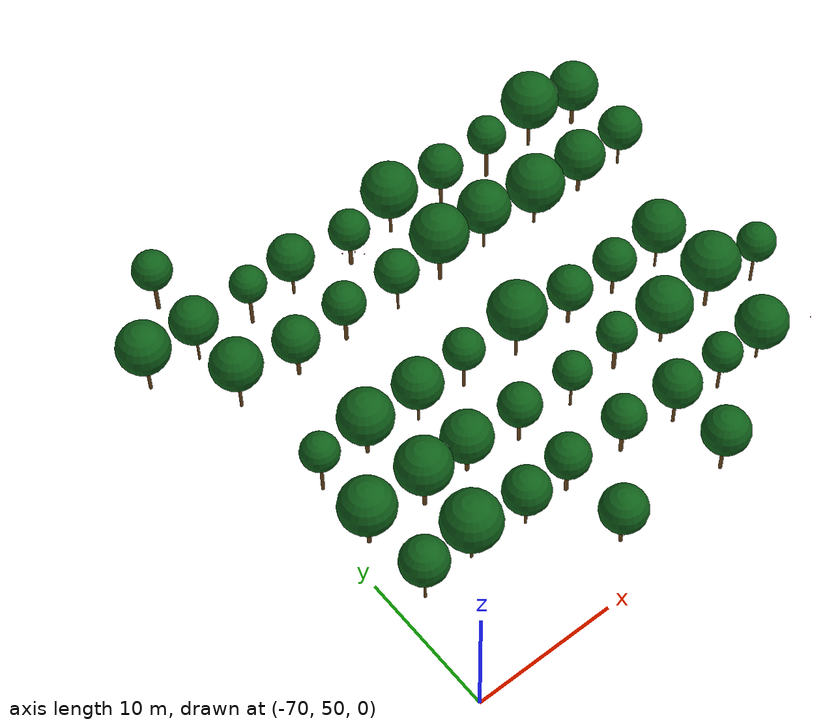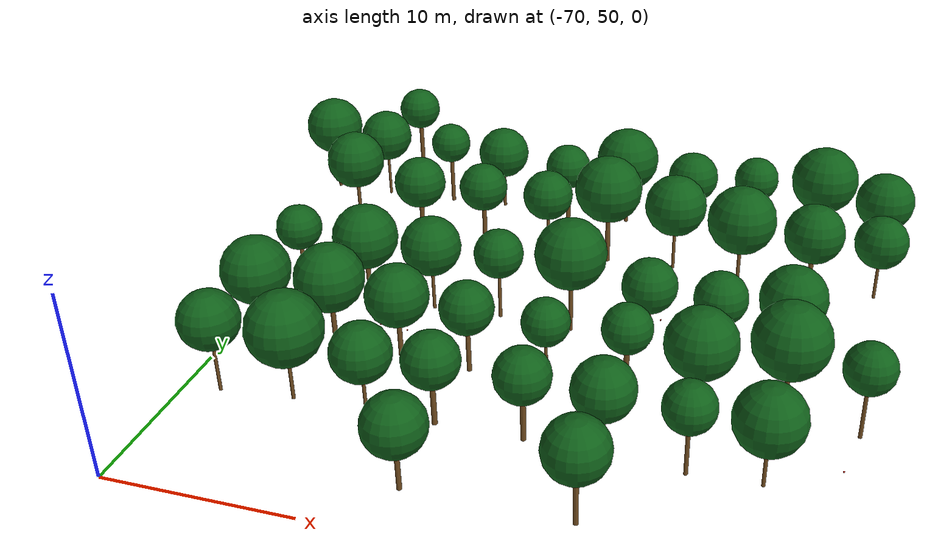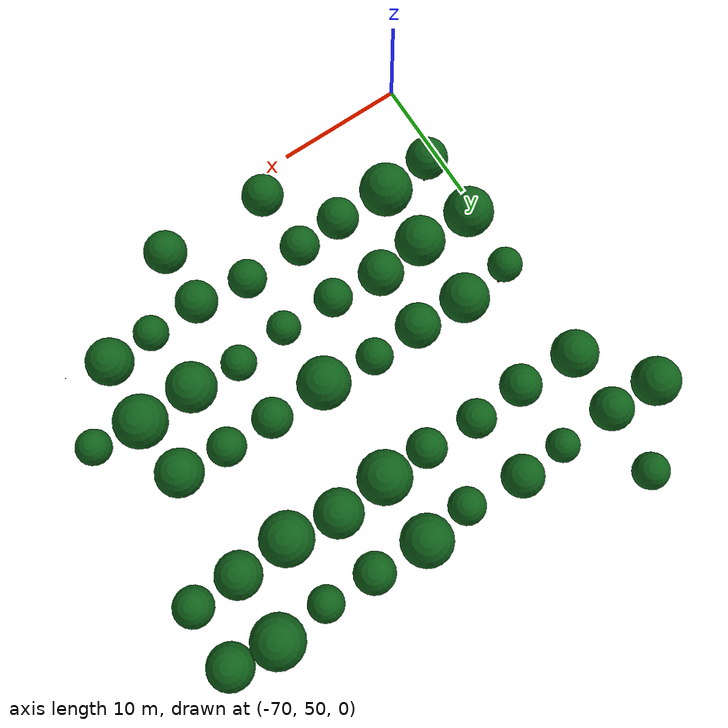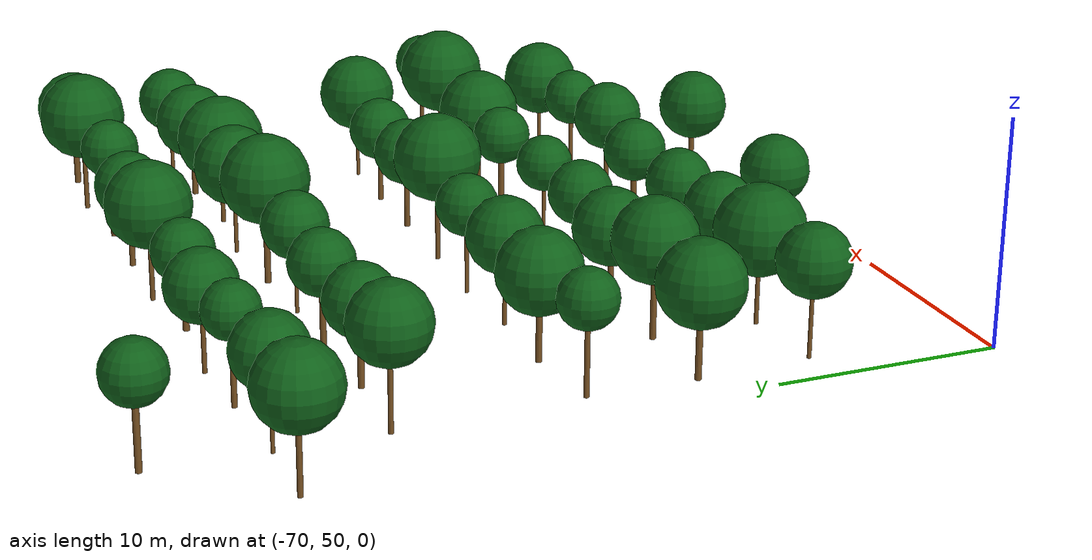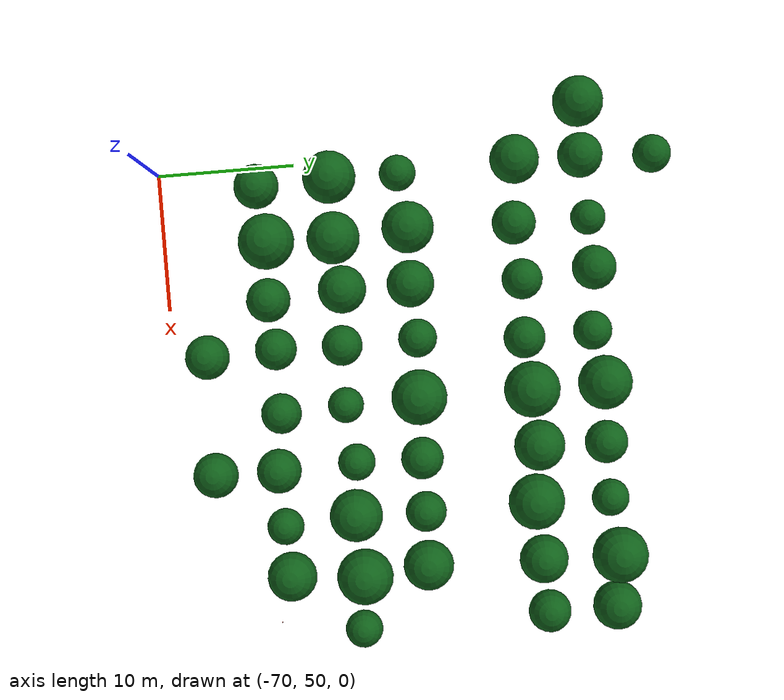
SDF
<sdf version="1.9">
 <world name="cheongsong_orchard">
  <model name="apple_tree_1759">
   <static>true</static>
   <pose>-56.31 53.08 0 0 0 0</pose>
   <link name="link">
    <collision name="trunk_col">
     <pose>0 0 1.05 0 0 0</pose>
     <geometry><cylinder><radius>0.124</radius><length>2.10</length></cylinder></geometry>
    </collision>
    <visual name="trunk_vis">
     <pose>0 0 1.05 0 0 0</pose>
     <geometry><cylinder><radius>0.124</radius><length>2.10</length></cylinder></geometry>
     <material><ambient>0.35 0.22 0.08 1</ambient><diffuse>0.45 0.30 0.12 1</diffuse></material>
    </visual>
    <collision name="canopy_col">
     <pose>0 0 3.68 0 0 0</pose>
     <geometry><sphere><radius>1.58</radius></sphere></geometry>
    </collision>
    <visual name="canopy_vis">
     <pose>0 0 3.68 0 0 0</pose>
     <geometry><sphere><radius>1.58</radius></sphere></geometry>
     <material><ambient>0.04 0.28 0.06 1</ambient><diffuse>0.06 0.38 0.10 1</diffuse></material>
    </visual>
   </link>
  </model>
  <model name="apple_tree_1761">
   <static>true</static>
   <pose>-47.95 53.09 0 0 0 0</pose>
   <link name="link">
    <collision name="trunk_col">
     <pose>0 0 1.29 0 0 0</pose>
     <geometry><cylinder><radius>0.121</radius><length>2.58</length></cylinder></geometry>
    </collision>
    <visual name="trunk_vis">
     <pose>0 0 1.29 0 0 0</pose>
     <geometry><cylinder><radius>0.121</radius><length>2.58</length></cylinder></geometry>
     <material><ambient>0.35 0.22 0.08 1</ambient><diffuse>0.45 0.30 0.12 1</diffuse></material>
    </visual>
    <collision name="canopy_col">
     <pose>0 0 4.18 0 0 0</pose>
     <geometry><sphere><radius>1.60</radius></sphere></geometry>
    </collision>
    <visual name="canopy_vis">
     <pose>0 0 4.18 0 0 0</pose>
     <geometry><sphere><radius>1.60</radius></sphere></geometry>
     <material><ambient>0.04 0.28 0.06 1</ambient><diffuse>0.06 0.38 0.10 1</diffuse></material>
    </visual>
   </link>
  </model>
  <model name="apple_tree_1812">
   <static>true</static>
   <pose>-68.05 57.58 0 0 0 0</pose>
   <link name="link">
    <collision name="trunk_col">
     <pose>0 0 1.34 0 0 0</pose>
     <geometry><cylinder><radius>0.088</radius><length>2.69</length></cylinder></geometry>
    </collision>
    <visual name="trunk_vis">
     <pose>0 0 1.34 0 0 0</pose>
     <geometry><cylinder><radius>0.088</radius><length>2.69</length></cylinder></geometry>
     <material><ambient>0.35 0.22 0.08 1</ambient><diffuse>0.45 0.30 0.12 1</diffuse></material>
    </visual>
    <collision name="canopy_col">
     <pose>0 0 4.28 0 0 0</pose>
     <geometry><sphere><radius>1.59</radius></sphere></geometry>
    </collision>
    <visual name="canopy_vis">
     <pose>0 0 4.28 0 0 0</pose>
     <geometry><sphere><radius>1.59</radius></sphere></geometry>
     <material><ambient>0.04 0.28 0.06 1</ambient><diffuse>0.06 0.38 0.10 1</diffuse></material>
    </visual>
   </link>
  </model>
  <model name="apple_tree_1813">
   <static>true</static>
   <pose>-64.13 57.96 0 0 0 0</pose>
   <link name="link">
    <collision name="trunk_col">
     <pose>0 0 1.13 0 0 0</pose>
     <geometry><cylinder><radius>0.093</radius><length>2.26</length></cylinder></geometry>
    </collision>
    <visual name="trunk_vis">
     <pose>0 0 1.13 0 0 0</pose>
     <geometry><cylinder><radius>0.093</radius><length>2.26</length></cylinder></geometry>
     <material><ambient>0.35 0.22 0.08 1</ambient><diffuse>0.45 0.30 0.12 1</diffuse></material>
    </visual>
    <collision name="canopy_col">
     <pose>0 0 4.25 0 0 0</pose>
     <geometry><sphere><radius>1.99</radius></sphere></geometry>
    </collision>
    <visual name="canopy_vis">
     <pose>0 0 4.25 0 0 0</pose>
     <geometry><sphere><radius>1.99</radius></sphere></geometry>
     <material><ambient>0.04 0.28 0.06 1</ambient><diffuse>0.06 0.38 0.10 1</diffuse></material>
    </visual>
   </link>
  </model>
  <model name="apple_tree_1814">
   <static>true</static>
   <pose>-60.01 57.73 0 0 0 0</pose>
   <link name="link">
    <collision name="trunk_col">
     <pose>0 0 1.10 0 0 0</pose>
     <geometry><cylinder><radius>0.088</radius><length>2.20</length></cylinder></geometry>
    </collision>
    <visual name="trunk_vis">
     <pose>0 0 1.10 0 0 0</pose>
     <geometry><cylinder><radius>0.088</radius><length>2.20</length></cylinder></geometry>
     <material><ambient>0.35 0.22 0.08 1</ambient><diffuse>0.45 0.30 0.12 1</diffuse></material>
    </visual>
    <collision name="canopy_col">
     <pose>0 0 3.76 0 0 0</pose>
     <geometry><sphere><radius>1.57</radius></sphere></geometry>
    </collision>
    <visual name="canopy_vis">
     <pose>0 0 3.76 0 0 0</pose>
     <geometry><sphere><radius>1.57</radius></sphere></geometry>
     <material><ambient>0.04 0.28 0.06 1</ambient><diffuse>0.06 0.38 0.10 1</diffuse></material>
    </visual>
   </link>
  </model>
  <model name="apple_tree_1815">
   <static>true</static>
   <pose>-56.49 57.99 0 0 0 0</pose>
   <link name="link">
    <collision name="trunk_col">
     <pose>0 0 1.17 0 0 0</pose>
     <geometry><cylinder><radius>0.140</radius><length>2.34</length></cylinder></geometry>
    </collision>
    <visual name="trunk_vis">
     <pose>0 0 1.17 0 0 0</pose>
     <geometry><cylinder><radius>0.140</radius><length>2.34</length></cylinder></geometry>
     <material><ambient>0.35 0.22 0.08 1</ambient><diffuse>0.45 0.30 0.12 1</diffuse></material>
    </visual>
    <collision name="canopy_col">
     <pose>0 0 3.82 0 0 0</pose>
     <geometry><sphere><radius>1.48</radius></sphere></geometry>
    </collision>
    <visual name="canopy_vis">
     <pose>0 0 3.82 0 0 0</pose>
     <geometry><sphere><radius>1.48</radius></sphere></geometry>
     <material><ambient>0.04 0.28 0.06 1</ambient><diffuse>0.06 0.38 0.10 1</diffuse></material>
    </visual>
   </link>
  </model>
  <model name="apple_tree_1816">
   <static>true</static>
   <pose>-51.92 58.01 0 0 0 0</pose>
   <link name="link">
    <collision name="trunk_col">
     <pose>0 0 1.19 0 0 0</pose>
     <geometry><cylinder><radius>0.139</radius><length>2.37</length></cylinder></geometry>
    </collision>
    <visual name="trunk_vis">
     <pose>0 0 1.19 0 0 0</pose>
     <geometry><cylinder><radius>0.139</radius><length>2.37</length></cylinder></geometry>
     <material><ambient>0.35 0.22 0.08 1</ambient><diffuse>0.45 0.30 0.12 1</diffuse></material>
    </visual>
    <collision name="canopy_col">
     <pose>0 0 3.81 0 0 0</pose>
     <geometry><sphere><radius>1.44</radius></sphere></geometry>
    </collision>
    <visual name="canopy_vis">
     <pose>0 0 3.81 0 0 0</pose>
     <geometry><sphere><radius>1.44</radius></sphere></geometry>
     <material><ambient>0.04 0.28 0.06 1</ambient><diffuse>0.06 0.38 0.10 1</diffuse></material>
    </visual>
   </link>
  </model>
  <model name="apple_tree_1817">
   <static>true</static>
   <pose>-47.89 57.56 0 0 0 0</pose>
   <link name="link">
    <collision name="trunk_col">
     <pose>0 0 1.29 0 0 0</pose>
     <geometry><cylinder><radius>0.107</radius><length>2.58</length></cylinder></geometry>
    </collision>
    <visual name="trunk_vis">
     <pose>0 0 1.29 0 0 0</pose>
     <geometry><cylinder><radius>0.107</radius><length>2.58</length></cylinder></geometry>
     <material><ambient>0.35 0.22 0.08 1</ambient><diffuse>0.45 0.30 0.12 1</diffuse></material>
    </visual>
    <collision name="canopy_col">
     <pose>0 0 4.15 0 0 0</pose>
     <geometry><sphere><radius>1.58</radius></sphere></geometry>
    </collision>
    <visual name="canopy_vis">
     <pose>0 0 4.15 0 0 0</pose>
     <geometry><sphere><radius>1.58</radius></sphere></geometry>
     <material><ambient>0.04 0.28 0.06 1</ambient><diffuse>0.06 0.38 0.10 1</diffuse></material>
    </visual>
   </link>
  </model>
  <model name="apple_tree_1818">
   <static>true</static>
   <pose>-43.92 57.68 0 0 0 0</pose>
   <link name="link">
    <collision name="trunk_col">
     <pose>0 0 1.29 0 0 0</pose>
     <geometry><cylinder><radius>0.103</radius><length>2.58</length></cylinder></geometry>
    </collision>
    <visual name="trunk_vis">
     <pose>0 0 1.29 0 0 0</pose>
     <geometry><cylinder><radius>0.103</radius><length>2.58</length></cylinder></geometry>
     <material><ambient>0.35 0.22 0.08 1</ambient><diffuse>0.45 0.30 0.12 1</diffuse></material>
    </visual>
    <collision name="canopy_col">
     <pose>0 0 3.89 0 0 0</pose>
     <geometry><sphere><radius>1.31</radius></sphere></geometry>
    </collision>
    <visual name="canopy_vis">
     <pose>0 0 3.89 0 0 0</pose>
     <geometry><sphere><radius>1.31</radius></sphere></geometry>
     <material><ambient>0.04 0.28 0.06 1</ambient><diffuse>0.06 0.38 0.10 1</diffuse></material>
    </visual>
   </link>
  </model>
  <model name="apple_tree_1819">
   <static>true</static>
   <pose>-40.34 57.85 0 0 0 0</pose>
   <link name="link">
    <collision name="trunk_col">
     <pose>0 0 1.04 0 0 0</pose>
     <geometry><cylinder><radius>0.091</radius><length>2.07</length></cylinder></geometry>
    </collision>
    <visual name="trunk_vis">
     <pose>0 0 1.04 0 0 0</pose>
     <geometry><cylinder><radius>0.091</radius><length>2.07</length></cylinder></geometry>
     <material><ambient>0.35 0.22 0.08 1</ambient><diffuse>0.45 0.30 0.12 1</diffuse></material>
    </visual>
    <collision name="canopy_col">
     <pose>0 0 3.83 0 0 0</pose>
     <geometry><sphere><radius>1.76</radius></sphere></geometry>
    </collision>
    <visual name="canopy_vis">
     <pose>0 0 3.83 0 0 0</pose>
     <geometry><sphere><radius>1.76</radius></sphere></geometry>
     <material><ambient>0.04 0.28 0.06 1</ambient><diffuse>0.06 0.38 0.10 1</diffuse></material>
    </visual>
   </link>
  </model>
  <model name="apple_tree_1868">
   <static>true</static>
   <pose>-68.30 62.75 0 0 0 0</pose>
   <link name="link">
    <collision name="trunk_col">
     <pose>0 0 1.14 0 0 0</pose>
     <geometry><cylinder><radius>0.137</radius><length>2.29</length></cylinder></geometry>
    </collision>
    <visual name="trunk_vis">
     <pose>0 0 1.14 0 0 0</pose>
     <geometry><cylinder><radius>0.137</radius><length>2.29</length></cylinder></geometry>
     <material><ambient>0.35 0.22 0.08 1</ambient><diffuse>0.45 0.30 0.12 1</diffuse></material>
    </visual>
    <collision name="canopy_col">
     <pose>0 0 4.17 0 0 0</pose>
     <geometry><sphere><radius>1.88</radius></sphere></geometry>
    </collision>
    <visual name="canopy_vis">
     <pose>0 0 4.17 0 0 0</pose>
     <geometry><sphere><radius>1.88</radius></sphere></geometry>
     <material><ambient>0.04 0.28 0.06 1</ambient><diffuse>0.06 0.38 0.10 1</diffuse></material>
    </visual>
   </link>
  </model>
  <model name="apple_tree_1869">
   <static>true</static>
   <pose>-63.98 62.71 0 0 0 0</pose>
   <link name="link">
    <collision name="trunk_col">
     <pose>0 0 1.28 0 0 0</pose>
     <geometry><cylinder><radius>0.132</radius><length>2.55</length></cylinder></geometry>
    </collision>
    <visual name="trunk_vis">
     <pose>0 0 1.28 0 0 0</pose>
     <geometry><cylinder><radius>0.132</radius><length>2.55</length></cylinder></geometry>
     <material><ambient>0.35 0.22 0.08 1</ambient><diffuse>0.45 0.30 0.12 1</diffuse></material>
    </visual>
    <collision name="canopy_col">
     <pose>0 0 4.42 0 0 0</pose>
     <geometry><sphere><radius>1.87</radius></sphere></geometry>
    </collision>
    <visual name="canopy_vis">
     <pose>0 0 4.42 0 0 0</pose>
     <geometry><sphere><radius>1.87</radius></sphere></geometry>
     <material><ambient>0.04 0.28 0.06 1</ambient><diffuse>0.06 0.38 0.10 1</diffuse></material>
    </visual>
   </link>
  </model>
  <model name="apple_tree_1870">
   <static>true</static>
   <pose>-60.35 63.01 0 0 0 0</pose>
   <link name="link">
    <collision name="trunk_col">
     <pose>0 0 1.02 0 0 0</pose>
     <geometry><cylinder><radius>0.131</radius><length>2.05</length></cylinder></geometry>
    </collision>
    <visual name="trunk_vis">
     <pose>0 0 1.02 0 0 0</pose>
     <geometry><cylinder><radius>0.131</radius><length>2.05</length></cylinder></geometry>
     <material><ambient>0.35 0.22 0.08 1</ambient><diffuse>0.45 0.30 0.12 1</diffuse></material>
    </visual>
    <collision name="canopy_col">
     <pose>0 0 3.76 0 0 0</pose>
     <geometry><sphere><radius>1.71</radius></sphere></geometry>
    </collision>
    <visual name="canopy_vis">
     <pose>0 0 3.76 0 0 0</pose>
     <geometry><sphere><radius>1.71</radius></sphere></geometry>
     <material><ambient>0.04 0.28 0.06 1</ambient><diffuse>0.06 0.38 0.10 1</diffuse></material>
    </visual>
   </link>
  </model>
  <model name="apple_tree_1871">
   <static>true</static>
   <pose>-56.38 62.70 0 0 0 0</pose>
   <link name="link">
    <collision name="trunk_col">
     <pose>0 0 1.22 0 0 0</pose>
     <geometry><cylinder><radius>0.125</radius><length>2.44</length></cylinder></geometry>
    </collision>
    <visual name="trunk_vis">
     <pose>0 0 1.22 0 0 0</pose>
     <geometry><cylinder><radius>0.125</radius><length>2.44</length></cylinder></geometry>
     <material><ambient>0.35 0.22 0.08 1</ambient><diffuse>0.45 0.30 0.12 1</diffuse></material>
    </visual>
    <collision name="canopy_col">
     <pose>0 0 3.88 0 0 0</pose>
     <geometry><sphere><radius>1.44</radius></sphere></geometry>
    </collision>
    <visual name="canopy_vis">
     <pose>0 0 3.88 0 0 0</pose>
     <geometry><sphere><radius>1.44</radius></sphere></geometry>
     <material><ambient>0.04 0.28 0.06 1</ambient><diffuse>0.06 0.38 0.10 1</diffuse></material>
    </visual>
   </link>
  </model>
  <model name="apple_tree_1872">
   <static>true</static>
   <pose>-52.15 62.62 0 0 0 0</pose>
   <link name="link">
    <collision name="trunk_col">
     <pose>0 0 1.28 0 0 0</pose>
     <geometry><cylinder><radius>0.085</radius><length>2.55</length></cylinder></geometry>
    </collision>
    <visual name="trunk_vis">
     <pose>0 0 1.28 0 0 0</pose>
     <geometry><cylinder><radius>0.085</radius><length>2.55</length></cylinder></geometry>
     <material><ambient>0.35 0.22 0.08 1</ambient><diffuse>0.45 0.30 0.12 1</diffuse></material>
    </visual>
    <collision name="canopy_col">
     <pose>0 0 3.83 0 0 0</pose>
     <geometry><sphere><radius>1.27</radius></sphere></geometry>
    </collision>
    <visual name="canopy_vis">
     <pose>0 0 3.83 0 0 0</pose>
     <geometry><sphere><radius>1.27</radius></sphere></geometry>
     <material><ambient>0.04 0.28 0.06 1</ambient><diffuse>0.06 0.38 0.10 1</diffuse></material>
    </visual>
   </link>
  </model>
  <model name="apple_tree_1873">
   <static>true</static>
   <pose>-48.06 63.06 0 0 0 0</pose>
   <link name="link">
    <collision name="trunk_col">
     <pose>0 0 1.30 0 0 0</pose>
     <geometry><cylinder><radius>0.140</radius><length>2.60</length></cylinder></geometry>
    </collision>
    <visual name="trunk_vis">
     <pose>0 0 1.30 0 0 0</pose>
     <geometry><cylinder><radius>0.140</radius><length>2.60</length></cylinder></geometry>
     <material><ambient>0.35 0.22 0.08 1</ambient><diffuse>0.45 0.30 0.12 1</diffuse></material>
    </visual>
    <collision name="canopy_col">
     <pose>0 0 3.91 0 0 0</pose>
     <geometry><sphere><radius>1.32</radius></sphere></geometry>
    </collision>
    <visual name="canopy_vis">
     <pose>0 0 3.91 0 0 0</pose>
     <geometry><sphere><radius>1.32</radius></sphere></geometry>
     <material><ambient>0.04 0.28 0.06 1</ambient><diffuse>0.06 0.38 0.10 1</diffuse></material>
    </visual>
   </link>
  </model>
  <model name="apple_tree_1874">
   <static>true</static>
   <pose>-44.29 62.72 0 0 0 0</pose>
   <link name="link">
    <collision name="trunk_col">
     <pose>0 0 1.04 0 0 0</pose>
     <geometry><cylinder><radius>0.107</radius><length>2.08</length></cylinder></geometry>
    </collision>
    <visual name="trunk_vis">
     <pose>0 0 1.04 0 0 0</pose>
     <geometry><cylinder><radius>0.107</radius><length>2.08</length></cylinder></geometry>
     <material><ambient>0.35 0.22 0.08 1</ambient><diffuse>0.45 0.30 0.12 1</diffuse></material>
    </visual>
    <collision name="canopy_col">
     <pose>0 0 3.96 0 0 0</pose>
     <geometry><sphere><radius>1.88</radius></sphere></geometry>
    </collision>
    <visual name="canopy_vis">
     <pose>0 0 3.96 0 0 0</pose>
     <geometry><sphere><radius>1.88</radius></sphere></geometry>
     <material><ambient>0.04 0.28 0.06 1</ambient><diffuse>0.06 0.38 0.10 1</diffuse></material>
    </visual>
   </link>
  </model>
  <model name="apple_tree_1875">
   <static>true</static>
   <pose>-40.05 63.04 0 0 0 0</pose>
   <link name="link">
    <collision name="trunk_col">
     <pose>0 0 1.36 0 0 0</pose>
     <geometry><cylinder><radius>0.123</radius><length>2.73</length></cylinder></geometry>
    </collision>
    <visual name="trunk_vis">
     <pose>0 0 1.36 0 0 0</pose>
     <geometry><cylinder><radius>0.123</radius><length>2.73</length></cylinder></geometry>
     <material><ambient>0.35 0.22 0.08 1</ambient><diffuse>0.45 0.30 0.12 1</diffuse></material>
    </visual>
    <collision name="canopy_col">
     <pose>0 0 4.71 0 0 0</pose>
     <geometry><sphere><radius>1.98</radius></sphere></geometry>
    </collision>
    <visual name="canopy_vis">
     <pose>0 0 4.71 0 0 0</pose>
     <geometry><sphere><radius>1.98</radius></sphere></geometry>
     <material><ambient>0.04 0.28 0.06 1</ambient><diffuse>0.06 0.38 0.10 1</diffuse></material>
    </visual>
   </link>
  </model>
  <model name="apple_tree_1876">
   <static>true</static>
   <pose>-36.30 62.65 0 0 0 0</pose>
   <link name="link">
    <collision name="trunk_col">
     <pose>0 0 1.38 0 0 0</pose>
     <geometry><cylinder><radius>0.097</radius><length>2.76</length></cylinder></geometry>
    </collision>
    <visual name="trunk_vis">
     <pose>0 0 1.38 0 0 0</pose>
     <geometry><cylinder><radius>0.097</radius><length>2.76</length></cylinder></geometry>
     <material><ambient>0.35 0.22 0.08 1</ambient><diffuse>0.45 0.30 0.12 1</diffuse></material>
    </visual>
    <collision name="canopy_col">
     <pose>0 0 4.08 0 0 0</pose>
     <geometry><sphere><radius>1.32</radius></sphere></geometry>
    </collision>
    <visual name="canopy_vis">
     <pose>0 0 4.08 0 0 0</pose>
     <geometry><sphere><radius>1.32</radius></sphere></geometry>
     <material><ambient>0.04 0.28 0.06 1</ambient><diffuse>0.06 0.38 0.10 1</diffuse></material>
    </visual>
   </link>
  </model>
  <model name="apple_tree_1925">
   <static>true</static>
   <pose>-68.19 67.59 0 0 0 0</pose>
   <link name="link">
    <collision name="trunk_col">
     <pose>0 0 1.46 0 0 0</pose>
     <geometry><cylinder><radius>0.113</radius><length>2.92</length></cylinder></geometry>
    </collision>
    <visual name="trunk_vis">
     <pose>0 0 1.46 0 0 0</pose>
     <geometry><cylinder><radius>0.113</radius><length>2.92</length></cylinder></geometry>
     <material><ambient>0.35 0.22 0.08 1</ambient><diffuse>0.45 0.30 0.12 1</diffuse></material>
    </visual>
    <collision name="canopy_col">
     <pose>0 0 4.21 0 0 0</pose>
     <geometry><sphere><radius>1.29</radius></sphere></geometry>
    </collision>
    <visual name="canopy_vis">
     <pose>0 0 4.21 0 0 0</pose>
     <geometry><sphere><radius>1.29</radius></sphere></geometry>
     <material><ambient>0.04 0.28 0.06 1</ambient><diffuse>0.06 0.38 0.10 1</diffuse></material>
    </visual>
   </link>
  </model>
  <model name="apple_tree_1926">
   <static>true</static>
   <pose>-64.35 68.01 0 0 0 0</pose>
   <link name="link">
    <collision name="trunk_col">
     <pose>0 0 1.06 0 0 0</pose>
     <geometry><cylinder><radius>0.133</radius><length>2.13</length></cylinder></geometry>
    </collision>
    <visual name="trunk_vis">
     <pose>0 0 1.06 0 0 0</pose>
     <geometry><cylinder><radius>0.133</radius><length>2.13</length></cylinder></geometry>
     <material><ambient>0.35 0.22 0.08 1</ambient><diffuse>0.45 0.30 0.12 1</diffuse></material>
    </visual>
    <collision name="canopy_col">
     <pose>0 0 3.97 0 0 0</pose>
     <geometry><sphere><radius>1.85</radius></sphere></geometry>
    </collision>
    <visual name="canopy_vis">
     <pose>0 0 3.97 0 0 0</pose>
     <geometry><sphere><radius>1.85</radius></sphere></geometry>
     <material><ambient>0.04 0.28 0.06 1</ambient><diffuse>0.06 0.38 0.10 1</diffuse></material>
    </visual>
   </link>
  </model>
  <model name="apple_tree_1927">
   <static>true</static>
   <pose>-60.34 67.88 0 0 0 0</pose>
   <link name="link">
    <collision name="trunk_col">
     <pose>0 0 1.19 0 0 0</pose>
     <geometry><cylinder><radius>0.090</radius><length>2.38</length></cylinder></geometry>
    </collision>
    <visual name="trunk_vis">
     <pose>0 0 1.19 0 0 0</pose>
     <geometry><cylinder><radius>0.090</radius><length>2.38</length></cylinder></geometry>
     <material><ambient>0.35 0.22 0.08 1</ambient><diffuse>0.45 0.30 0.12 1</diffuse></material>
    </visual>
    <collision name="canopy_col">
     <pose>0 0 4.05 0 0 0</pose>
     <geometry><sphere><radius>1.68</radius></sphere></geometry>
    </collision>
    <visual name="canopy_vis">
     <pose>0 0 4.05 0 0 0</pose>
     <geometry><sphere><radius>1.68</radius></sphere></geometry>
     <material><ambient>0.04 0.28 0.06 1</ambient><diffuse>0.06 0.38 0.10 1</diffuse></material>
    </visual>
   </link>
  </model>
  <model name="apple_tree_1928">
   <static>true</static>
   <pose>-56.46 68.07 0 0 0 0</pose>
   <link name="link">
    <collision name="trunk_col">
     <pose>0 0 1.35 0 0 0</pose>
     <geometry><cylinder><radius>0.093</radius><length>2.70</length></cylinder></geometry>
    </collision>
    <visual name="trunk_vis">
     <pose>0 0 1.35 0 0 0</pose>
     <geometry><cylinder><radius>0.093</radius><length>2.70</length></cylinder></geometry>
     <material><ambient>0.35 0.22 0.08 1</ambient><diffuse>0.45 0.30 0.12 1</diffuse></material>
    </visual>
    <collision name="canopy_col">
     <pose>0 0 4.07 0 0 0</pose>
     <geometry><sphere><radius>1.37</radius></sphere></geometry>
    </collision>
    <visual name="canopy_vis">
     <pose>0 0 4.07 0 0 0</pose>
     <geometry><sphere><radius>1.37</radius></sphere></geometry>
     <material><ambient>0.04 0.28 0.06 1</ambient><diffuse>0.06 0.38 0.10 1</diffuse></material>
    </visual>
   </link>
  </model>
  <model name="apple_tree_1929">
   <static>true</static>
   <pose>-52.30 67.85 0 0 0 0</pose>
   <link name="link">
    <collision name="trunk_col">
     <pose>0 0 1.44 0 0 0</pose>
     <geometry><cylinder><radius>0.104</radius><length>2.87</length></cylinder></geometry>
    </collision>
    <visual name="trunk_vis">
     <pose>0 0 1.44 0 0 0</pose>
     <geometry><cylinder><radius>0.104</radius><length>2.87</length></cylinder></geometry>
     <material><ambient>0.35 0.22 0.08 1</ambient><diffuse>0.45 0.30 0.12 1</diffuse></material>
    </visual>
    <collision name="canopy_col">
     <pose>0 0 4.84 0 0 0</pose>
     <geometry><sphere><radius>1.96</radius></sphere></geometry>
    </collision>
    <visual name="canopy_vis">
     <pose>0 0 4.84 0 0 0</pose>
     <geometry><sphere><radius>1.96</radius></sphere></geometry>
     <material><ambient>0.04 0.28 0.06 1</ambient><diffuse>0.06 0.38 0.10 1</diffuse></material>
    </visual>
   </link>
  </model>
  <model name="apple_tree_1930">
   <static>true</static>
   <pose>-47.94 67.72 0 0 0 0</pose>
   <link name="link">
    <collision name="trunk_col">
     <pose>0 0 1.07 0 0 0</pose>
     <geometry><cylinder><radius>0.125</radius><length>2.15</length></cylinder></geometry>
    </collision>
    <visual name="trunk_vis">
     <pose>0 0 1.07 0 0 0</pose>
     <geometry><cylinder><radius>0.125</radius><length>2.15</length></cylinder></geometry>
     <material><ambient>0.35 0.22 0.08 1</ambient><diffuse>0.45 0.30 0.12 1</diffuse></material>
    </visual>
    <collision name="canopy_col">
     <pose>0 0 3.66 0 0 0</pose>
     <geometry><sphere><radius>1.51</radius></sphere></geometry>
    </collision>
    <visual name="canopy_vis">
     <pose>0 0 3.66 0 0 0</pose>
     <geometry><sphere><radius>1.51</radius></sphere></geometry>
     <material><ambient>0.04 0.28 0.06 1</ambient><diffuse>0.06 0.38 0.10 1</diffuse></material>
    </visual>
   </link>
  </model>
  <model name="apple_tree_1931">
   <static>true</static>
   <pose>-44.13 67.68 0 0 0 0</pose>
   <link name="link">
    <collision name="trunk_col">
     <pose>0 0 1.05 0 0 0</pose>
     <geometry><cylinder><radius>0.118</radius><length>2.11</length></cylinder></geometry>
    </collision>
    <visual name="trunk_vis">
     <pose>0 0 1.05 0 0 0</pose>
     <geometry><cylinder><radius>0.118</radius><length>2.11</length></cylinder></geometry>
     <material><ambient>0.35 0.22 0.08 1</ambient><diffuse>0.45 0.30 0.12 1</diffuse></material>
    </visual>
    <collision name="canopy_col">
     <pose>0 0 3.56 0 0 0</pose>
     <geometry><sphere><radius>1.45</radius></sphere></geometry>
    </collision>
    <visual name="canopy_vis">
     <pose>0 0 3.56 0 0 0</pose>
     <geometry><sphere><radius>1.45</radius></sphere></geometry>
     <material><ambient>0.04 0.28 0.06 1</ambient><diffuse>0.06 0.38 0.10 1</diffuse></material>
    </visual>
   </link>
  </model>
  <model name="apple_tree_1932">
   <static>true</static>
   <pose>-40.42 67.55 0 0 0 0</pose>
   <link name="link">
    <collision name="trunk_col">
     <pose>0 0 1.23 0 0 0</pose>
     <geometry><cylinder><radius>0.081</radius><length>2.46</length></cylinder></geometry>
    </collision>
    <visual name="trunk_vis">
     <pose>0 0 1.23 0 0 0</pose>
     <geometry><cylinder><radius>0.081</radius><length>2.46</length></cylinder></geometry>
     <material><ambient>0.35 0.22 0.08 1</ambient><diffuse>0.45 0.30 0.12 1</diffuse></material>
    </visual>
    <collision name="canopy_col">
     <pose>0 0 4.23 0 0 0</pose>
     <geometry><sphere><radius>1.78</radius></sphere></geometry>
    </collision>
    <visual name="canopy_vis">
     <pose>0 0 4.23 0 0 0</pose>
     <geometry><sphere><radius>1.78</radius></sphere></geometry>
     <material><ambient>0.04 0.28 0.06 1</ambient><diffuse>0.06 0.38 0.10 1</diffuse></material>
    </visual>
   </link>
  </model>
  <model name="apple_tree_1982">
   <static>true</static>
   <pose>-68.44 75.86 0 0 0 0</pose>
   <link name="link">
    <collision name="trunk_col">
     <pose>0 0 1.42 0 0 0</pose>
     <geometry><cylinder><radius>0.105</radius><length>2.84</length></cylinder></geometry>
    </collision>
    <visual name="trunk_vis">
     <pose>0 0 1.42 0 0 0</pose>
     <geometry><cylinder><radius>0.105</radius><length>2.84</length></cylinder></geometry>
     <material><ambient>0.35 0.22 0.08 1</ambient><diffuse>0.45 0.30 0.12 1</diffuse></material>
    </visual>
    <collision name="canopy_col">
     <pose>0 0 4.59 0 0 0</pose>
     <geometry><sphere><radius>1.74</radius></sphere></geometry>
    </collision>
    <visual name="canopy_vis">
     <pose>0 0 4.59 0 0 0</pose>
     <geometry><sphere><radius>1.74</radius></sphere></geometry>
     <material><ambient>0.04 0.28 0.06 1</ambient><diffuse>0.06 0.38 0.10 1</diffuse></material>
    </visual>
   </link>
  </model>
  <model name="apple_tree_1983">
   <static>true</static>
   <pose>-64.08 75.55 0 0 0 0</pose>
   <link name="link">
    <collision name="trunk_col">
     <pose>0 0 1.10 0 0 0</pose>
     <geometry><cylinder><radius>0.139</radius><length>2.21</length></cylinder></geometry>
    </collision>
    <visual name="trunk_vis">
     <pose>0 0 1.10 0 0 0</pose>
     <geometry><cylinder><radius>0.139</radius><length>2.21</length></cylinder></geometry>
     <material><ambient>0.35 0.22 0.08 1</ambient><diffuse>0.45 0.30 0.12 1</diffuse></material>
    </visual>
    <collision name="canopy_col">
     <pose>0 0 3.77 0 0 0</pose>
     <geometry><sphere><radius>1.56</radius></sphere></geometry>
    </collision>
    <visual name="canopy_vis">
     <pose>0 0 3.77 0 0 0</pose>
     <geometry><sphere><radius>1.56</radius></sphere></geometry>
     <material><ambient>0.04 0.28 0.06 1</ambient><diffuse>0.06 0.38 0.10 1</diffuse></material>
    </visual>
   </link>
  </model>
  <model name="apple_tree_1984">
   <static>true</static>
   <pose>-60.04 75.80 0 0 0 0</pose>
   <link name="link">
    <collision name="trunk_col">
     <pose>0 0 1.22 0 0 0</pose>
     <geometry><cylinder><radius>0.133</radius><length>2.44</length></cylinder></geometry>
    </collision>
    <visual name="trunk_vis">
     <pose>0 0 1.22 0 0 0</pose>
     <geometry><cylinder><radius>0.133</radius><length>2.44</length></cylinder></geometry>
     <material><ambient>0.35 0.22 0.08 1</ambient><diffuse>0.45 0.30 0.12 1</diffuse></material>
    </visual>
    <collision name="canopy_col">
     <pose>0 0 3.89 0 0 0</pose>
     <geometry><sphere><radius>1.45</radius></sphere></geometry>
    </collision>
    <visual name="canopy_vis">
     <pose>0 0 3.89 0 0 0</pose>
     <geometry><sphere><radius>1.45</radius></sphere></geometry>
     <material><ambient>0.04 0.28 0.06 1</ambient><diffuse>0.06 0.38 0.10 1</diffuse></material>
    </visual>
   </link>
  </model>
  <model name="apple_tree_1985">
   <static>true</static>
   <pose>-55.89 75.62 0 0 0 0</pose>
   <link name="link">
    <collision name="trunk_col">
     <pose>0 0 1.26 0 0 0</pose>
     <geometry><cylinder><radius>0.083</radius><length>2.52</length></cylinder></geometry>
    </collision>
    <visual name="trunk_vis">
     <pose>0 0 1.26 0 0 0</pose>
     <geometry><cylinder><radius>0.083</radius><length>2.52</length></cylinder></geometry>
     <material><ambient>0.35 0.22 0.08 1</ambient><diffuse>0.45 0.30 0.12 1</diffuse></material>
    </visual>
    <collision name="canopy_col">
     <pose>0 0 4.00 0 0 0</pose>
     <geometry><sphere><radius>1.48</radius></sphere></geometry>
    </collision>
    <visual name="canopy_vis">
     <pose>0 0 4.00 0 0 0</pose>
     <geometry><sphere><radius>1.48</radius></sphere></geometry>
     <material><ambient>0.04 0.28 0.06 1</ambient><diffuse>0.06 0.38 0.10 1</diffuse></material>
    </visual>
   </link>
  </model>
  <model name="apple_tree_1986">
   <static>true</static>
   <pose>-52.21 75.79 0 0 0 0</pose>
   <link name="link">
    <collision name="trunk_col">
     <pose>0 0 1.43 0 0 0</pose>
     <geometry><cylinder><radius>0.139</radius><length>2.85</length></cylinder></geometry>
    </collision>
    <visual name="trunk_vis">
     <pose>0 0 1.43 0 0 0</pose>
     <geometry><cylinder><radius>0.139</radius><length>2.85</length></cylinder></geometry>
     <material><ambient>0.35 0.22 0.08 1</ambient><diffuse>0.45 0.30 0.12 1</diffuse></material>
    </visual>
    <collision name="canopy_col">
     <pose>0 0 4.83 0 0 0</pose>
     <geometry><sphere><radius>1.98</radius></sphere></geometry>
    </collision>
    <visual name="canopy_vis">
     <pose>0 0 4.83 0 0 0</pose>
     <geometry><sphere><radius>1.98</radius></sphere></geometry>
     <material><ambient>0.04 0.28 0.06 1</ambient><diffuse>0.06 0.38 0.10 1</diffuse></material>
    </visual>
   </link>
  </model>
  <model name="apple_tree_1987">
   <static>true</static>
   <pose>-48.21 76.05 0 0 0 0</pose>
   <link name="link">
    <collision name="trunk_col">
     <pose>0 0 1.20 0 0 0</pose>
     <geometry><cylinder><radius>0.090</radius><length>2.39</length></cylinder></geometry>
    </collision>
    <visual name="trunk_vis">
     <pose>0 0 1.20 0 0 0</pose>
     <geometry><cylinder><radius>0.090</radius><length>2.39</length></cylinder></geometry>
     <material><ambient>0.35 0.22 0.08 1</ambient><diffuse>0.45 0.30 0.12 1</diffuse></material>
    </visual>
    <collision name="canopy_col">
     <pose>0 0 4.19 0 0 0</pose>
     <geometry><sphere><radius>1.80</radius></sphere></geometry>
    </collision>
    <visual name="canopy_vis">
     <pose>0 0 4.19 0 0 0</pose>
     <geometry><sphere><radius>1.80</radius></sphere></geometry>
     <material><ambient>0.04 0.28 0.06 1</ambient><diffuse>0.06 0.38 0.10 1</diffuse></material>
    </visual>
   </link>
  </model>
  <model name="apple_tree_1988">
   <static>true</static>
   <pose>-44.24 75.53 0 0 0 0</pose>
   <link name="link">
    <collision name="trunk_col">
     <pose>0 0 1.04 0 0 0</pose>
     <geometry><cylinder><radius>0.102</radius><length>2.09</length></cylinder></geometry>
    </collision>
    <visual name="trunk_vis">
     <pose>0 0 1.04 0 0 0</pose>
     <geometry><cylinder><radius>0.102</radius><length>2.09</length></cylinder></geometry>
     <material><ambient>0.35 0.22 0.08 1</ambient><diffuse>0.45 0.30 0.12 1</diffuse></material>
    </visual>
    <collision name="canopy_col">
     <pose>0 0 4.08 0 0 0</pose>
     <geometry><sphere><radius>1.99</radius></sphere></geometry>
    </collision>
    <visual name="canopy_vis">
     <pose>0 0 4.08 0 0 0</pose>
     <geometry><sphere><radius>1.99</radius></sphere></geometry>
     <material><ambient>0.04 0.28 0.06 1</ambient><diffuse>0.06 0.38 0.10 1</diffuse></material>
    </visual>
   </link>
  </model>
  <model name="apple_tree_1989">
   <static>true</static>
   <pose>-40.11 75.75 0 0 0 0</pose>
   <link name="link">
    <collision name="trunk_col">
     <pose>0 0 0.98 0 0 0</pose>
     <geometry><cylinder><radius>0.135</radius><length>1.96</length></cylinder></geometry>
    </collision>
    <visual name="trunk_vis">
     <pose>0 0 0.98 0 0 0</pose>
     <geometry><cylinder><radius>0.135</radius><length>1.96</length></cylinder></geometry>
     <material><ambient>0.35 0.22 0.08 1</ambient><diffuse>0.45 0.30 0.12 1</diffuse></material>
    </visual>
    <collision name="canopy_col">
     <pose>0 0 3.69 0 0 0</pose>
     <geometry><sphere><radius>1.73</radius></sphere></geometry>
    </collision>
    <visual name="canopy_vis">
     <pose>0 0 3.69 0 0 0</pose>
     <geometry><sphere><radius>1.73</radius></sphere></geometry>
     <material><ambient>0.04 0.28 0.06 1</ambient><diffuse>0.06 0.38 0.10 1</diffuse></material>
    </visual>
   </link>
  </model>
  <model name="apple_tree_1990">
   <static>true</static>
   <pose>-36.39 75.87 0 0 0 0</pose>
   <link name="link">
    <collision name="trunk_col">
     <pose>0 0 1.06 0 0 0</pose>
     <geometry><cylinder><radius>0.087</radius><length>2.13</length></cylinder></geometry>
    </collision>
    <visual name="trunk_vis">
     <pose>0 0 1.06 0 0 0</pose>
     <geometry><cylinder><radius>0.087</radius><length>2.13</length></cylinder></geometry>
     <material><ambient>0.35 0.22 0.08 1</ambient><diffuse>0.45 0.30 0.12 1</diffuse></material>
    </visual>
    <collision name="canopy_col">
     <pose>0 0 3.64 0 0 0</pose>
     <geometry><sphere><radius>1.51</radius></sphere></geometry>
    </collision>
    <visual name="canopy_vis">
     <pose>0 0 3.64 0 0 0</pose>
     <geometry><sphere><radius>1.51</radius></sphere></geometry>
     <material><ambient>0.04 0.28 0.06 1</ambient><diffuse>0.06 0.38 0.10 1</diffuse></material>
    </visual>
   </link>
  </model>
  <model name="apple_tree_2036">
   <static>true</static>
   <pose>-72.16 80.67 0 0 0 0</pose>
   <link name="link">
    <collision name="trunk_col">
     <pose>0 0 1.32 0 0 0</pose>
     <geometry><cylinder><radius>0.114</radius><length>2.64</length></cylinder></geometry>
    </collision>
    <visual name="trunk_vis">
     <pose>0 0 1.32 0 0 0</pose>
     <geometry><cylinder><radius>0.114</radius><length>2.64</length></cylinder></geometry>
     <material><ambient>0.35 0.22 0.08 1</ambient><diffuse>0.45 0.30 0.12 1</diffuse></material>
    </visual>
    <collision name="canopy_col">
     <pose>0 0 4.42 0 0 0</pose>
     <geometry><sphere><radius>1.79</radius></sphere></geometry>
    </collision>
    <visual name="canopy_vis">
     <pose>0 0 4.42 0 0 0</pose>
     <geometry><sphere><radius>1.79</radius></sphere></geometry>
     <material><ambient>0.04 0.28 0.06 1</ambient><diffuse>0.06 0.38 0.10 1</diffuse></material>
    </visual>
   </link>
  </model>
  <model name="apple_tree_2037">
   <static>true</static>
   <pose>-68.40 80.55 0 0 0 0</pose>
   <link name="link">
    <collision name="trunk_col">
     <pose>0 0 1.31 0 0 0</pose>
     <geometry><cylinder><radius>0.082</radius><length>2.61</length></cylinder></geometry>
    </collision>
    <visual name="trunk_vis">
     <pose>0 0 1.31 0 0 0</pose>
     <geometry><cylinder><radius>0.082</radius><length>2.61</length></cylinder></geometry>
     <material><ambient>0.35 0.22 0.08 1</ambient><diffuse>0.45 0.30 0.12 1</diffuse></material>
    </visual>
    <collision name="canopy_col">
     <pose>0 0 4.21 0 0 0</pose>
     <geometry><sphere><radius>1.60</radius></sphere></geometry>
    </collision>
    <visual name="canopy_vis">
     <pose>0 0 4.21 0 0 0</pose>
     <geometry><sphere><radius>1.60</radius></sphere></geometry>
     <material><ambient>0.04 0.28 0.06 1</ambient><diffuse>0.06 0.38 0.10 1</diffuse></material>
    </visual>
   </link>
  </model>
  <model name="apple_tree_2038">
   <static>true</static>
   <pose>-63.99 80.76 0 0 0 0</pose>
   <link name="link">
    <collision name="trunk_col">
     <pose>0 0 1.45 0 0 0</pose>
     <geometry><cylinder><radius>0.120</radius><length>2.90</length></cylinder></geometry>
    </collision>
    <visual name="trunk_vis">
     <pose>0 0 1.45 0 0 0</pose>
     <geometry><cylinder><radius>0.120</radius><length>2.90</length></cylinder></geometry>
     <material><ambient>0.35 0.22 0.08 1</ambient><diffuse>0.45 0.30 0.12 1</diffuse></material>
    </visual>
    <collision name="canopy_col">
     <pose>0 0 4.13 0 0 0</pose>
     <geometry><sphere><radius>1.24</radius></sphere></geometry>
    </collision>
    <visual name="canopy_vis">
     <pose>0 0 4.13 0 0 0</pose>
     <geometry><sphere><radius>1.24</radius></sphere></geometry>
     <material><ambient>0.04 0.28 0.06 1</ambient><diffuse>0.06 0.38 0.10 1</diffuse></material>
    </visual>
   </link>
  </model>
  <model name="apple_tree_2039">
   <static>true</static>
   <pose>-60.45 80.97 0 0 0 0</pose>
   <link name="link">
    <collision name="trunk_col">
     <pose>0 0 1.11 0 0 0</pose>
     <geometry><cylinder><radius>0.100</radius><length>2.22</length></cylinder></geometry>
    </collision>
    <visual name="trunk_vis">
     <pose>0 0 1.11 0 0 0</pose>
     <geometry><cylinder><radius>0.100</radius><length>2.22</length></cylinder></geometry>
     <material><ambient>0.35 0.22 0.08 1</ambient><diffuse>0.45 0.30 0.12 1</diffuse></material>
    </visual>
    <collision name="canopy_col">
     <pose>0 0 3.81 0 0 0</pose>
     <geometry><sphere><radius>1.58</radius></sphere></geometry>
    </collision>
    <visual name="canopy_vis">
     <pose>0 0 3.81 0 0 0</pose>
     <geometry><sphere><radius>1.58</radius></sphere></geometry>
     <material><ambient>0.04 0.28 0.06 1</ambient><diffuse>0.06 0.38 0.10 1</diffuse></material>
    </visual>
   </link>
  </model>
  <model name="apple_tree_2040">
   <static>true</static>
   <pose>-56.01 80.53 0 0 0 0</pose>
   <link name="link">
    <collision name="trunk_col">
     <pose>0 0 1.11 0 0 0</pose>
     <geometry><cylinder><radius>0.141</radius><length>2.22</length></cylinder></geometry>
    </collision>
    <visual name="trunk_vis">
     <pose>0 0 1.11 0 0 0</pose>
     <geometry><cylinder><radius>0.141</radius><length>2.22</length></cylinder></geometry>
     <material><ambient>0.35 0.22 0.08 1</ambient><diffuse>0.45 0.30 0.12 1</diffuse></material>
    </visual>
    <collision name="canopy_col">
     <pose>0 0 3.60 0 0 0</pose>
     <geometry><sphere><radius>1.39</radius></sphere></geometry>
    </collision>
    <visual name="canopy_vis">
     <pose>0 0 3.60 0 0 0</pose>
     <geometry><sphere><radius>1.39</radius></sphere></geometry>
     <material><ambient>0.04 0.28 0.06 1</ambient><diffuse>0.06 0.38 0.10 1</diffuse></material>
    </visual>
   </link>
  </model>
  <model name="apple_tree_2041">
   <static>true</static>
   <pose>-52.27 81.00 0 0 0 0</pose>
   <link name="link">
    <collision name="trunk_col">
     <pose>0 0 1.24 0 0 0</pose>
     <geometry><cylinder><radius>0.106</radius><length>2.48</length></cylinder></geometry>
    </collision>
    <visual name="trunk_vis">
     <pose>0 0 1.24 0 0 0</pose>
     <geometry><cylinder><radius>0.106</radius><length>2.48</length></cylinder></geometry>
     <material><ambient>0.35 0.22 0.08 1</ambient><diffuse>0.45 0.30 0.12 1</diffuse></material>
    </visual>
    <collision name="canopy_col">
     <pose>0 0 4.40 0 0 0</pose>
     <geometry><sphere><radius>1.92</radius></sphere></geometry>
    </collision>
    <visual name="canopy_vis">
     <pose>0 0 4.40 0 0 0</pose>
     <geometry><sphere><radius>1.92</radius></sphere></geometry>
     <material><ambient>0.04 0.28 0.06 1</ambient><diffuse>0.06 0.38 0.10 1</diffuse></material>
    </visual>
   </link>
  </model>
  <model name="apple_tree_2042">
   <static>true</static>
   <pose>-48.05 80.83 0 0 0 0</pose>
   <link name="link">
    <collision name="trunk_col">
     <pose>0 0 1.13 0 0 0</pose>
     <geometry><cylinder><radius>0.125</radius><length>2.26</length></cylinder></geometry>
    </collision>
    <visual name="trunk_vis">
     <pose>0 0 1.13 0 0 0</pose>
     <geometry><cylinder><radius>0.125</radius><length>2.26</length></cylinder></geometry>
     <material><ambient>0.35 0.22 0.08 1</ambient><diffuse>0.45 0.30 0.12 1</diffuse></material>
    </visual>
    <collision name="canopy_col">
     <pose>0 0 3.79 0 0 0</pose>
     <geometry><sphere><radius>1.53</radius></sphere></geometry>
    </collision>
    <visual name="canopy_vis">
     <pose>0 0 3.79 0 0 0</pose>
     <geometry><sphere><radius>1.53</radius></sphere></geometry>
     <material><ambient>0.04 0.28 0.06 1</ambient><diffuse>0.06 0.38 0.10 1</diffuse></material>
    </visual>
   </link>
  </model>
  <model name="apple_tree_2043">
   <static>true</static>
   <pose>-44.14 80.73 0 0 0 0</pose>
   <link name="link">
    <collision name="trunk_col">
     <pose>0 0 1.45 0 0 0</pose>
     <geometry><cylinder><radius>0.134</radius><length>2.91</length></cylinder></geometry>
    </collision>
    <visual name="trunk_vis">
     <pose>0 0 1.45 0 0 0</pose>
     <geometry><cylinder><radius>0.134</radius><length>2.91</length></cylinder></geometry>
     <material><ambient>0.35 0.22 0.08 1</ambient><diffuse>0.45 0.30 0.12 1</diffuse></material>
    </visual>
    <collision name="canopy_col">
     <pose>0 0 4.23 0 0 0</pose>
     <geometry><sphere><radius>1.32</radius></sphere></geometry>
    </collision>
    <visual name="canopy_vis">
     <pose>0 0 4.23 0 0 0</pose>
     <geometry><sphere><radius>1.32</radius></sphere></geometry>
     <material><ambient>0.04 0.28 0.06 1</ambient><diffuse>0.06 0.38 0.10 1</diffuse></material>
    </visual>
   </link>
  </model>
  <model name="apple_tree_2044">
   <static>true</static>
   <pose>-40.09 81.04 0 0 0 0</pose>
   <link name="link">
    <collision name="trunk_col">
     <pose>0 0 1.30 0 0 0</pose>
     <geometry><cylinder><radius>0.109</radius><length>2.61</length></cylinder></geometry>
    </collision>
    <visual name="trunk_vis">
     <pose>0 0 1.30 0 0 0</pose>
     <geometry><cylinder><radius>0.109</radius><length>2.61</length></cylinder></geometry>
     <material><ambient>0.35 0.22 0.08 1</ambient><diffuse>0.45 0.30 0.12 1</diffuse></material>
    </visual>
    <collision name="canopy_col">
     <pose>0 0 4.58 0 0 0</pose>
     <geometry><sphere><radius>1.97</radius></sphere></geometry>
    </collision>
    <visual name="canopy_vis">
     <pose>0 0 4.58 0 0 0</pose>
     <geometry><sphere><radius>1.97</radius></sphere></geometry>
     <material><ambient>0.04 0.28 0.06 1</ambient><diffuse>0.06 0.38 0.10 1</diffuse></material>
    </visual>
   </link>
  </model>
  <model name="apple_tree_2045">
   <static>true</static>
   <pose>-36.44 80.66 0 0 0 0</pose>
   <link name="link">
    <collision name="trunk_col">
     <pose>0 0 1.04 0 0 0</pose>
     <geometry><cylinder><radius>0.145</radius><length>2.08</length></cylinder></geometry>
    </collision>
    <visual name="trunk_vis">
     <pose>0 0 1.04 0 0 0</pose>
     <geometry><cylinder><radius>0.145</radius><length>2.08</length></cylinder></geometry>
     <material><ambient>0.35 0.22 0.08 1</ambient><diffuse>0.45 0.30 0.12 1</diffuse></material>
    </visual>
    <collision name="canopy_col">
     <pose>0 0 3.80 0 0 0</pose>
     <geometry><sphere><radius>1.72</radius></sphere></geometry>
    </collision>
    <visual name="canopy_vis">
     <pose>0 0 3.80 0 0 0</pose>
     <geometry><sphere><radius>1.72</radius></sphere></geometry>
     <material><ambient>0.04 0.28 0.06 1</ambient><diffuse>0.06 0.38 0.10 1</diffuse></material>
    </visual>
   </link>
  </model>
  <model name="apple_tree_2094">
   <static>true</static>
   <pose>-68.11 85.63 0 0 0 0</pose>
   <link name="link">
    <collision name="trunk_col">
     <pose>0 0 1.36 0 0 0</pose>
     <geometry><cylinder><radius>0.138</radius><length>2.72</length></cylinder></geometry>
    </collision>
    <visual name="trunk_vis">
     <pose>0 0 1.36 0 0 0</pose>
     <geometry><cylinder><radius>0.138</radius><length>2.72</length></cylinder></geometry>
     <material><ambient>0.35 0.22 0.08 1</ambient><diffuse>0.45 0.30 0.12 1</diffuse></material>
    </visual>
    <collision name="canopy_col">
     <pose>0 0 4.07 0 0 0</pose>
     <geometry><sphere><radius>1.35</radius></sphere></geometry>
    </collision>
    <visual name="canopy_vis">
     <pose>0 0 4.07 0 0 0</pose>
     <geometry><sphere><radius>1.35</radius></sphere></geometry>
     <material><ambient>0.04 0.28 0.06 1</ambient><diffuse>0.06 0.38 0.10 1</diffuse></material>
    </visual>
   </link>
  </model>
  <model name="apple_1820_0">
   <static>true</static>
   <pose>-36.91 56.74 2.55 0 0 0</pose>
   <link name="link">
    <visual name="visual">
     <geometry><sphere><radius>0.04</radius></sphere></geometry>
     <material><ambient>0.7 0.05 0.02 1</ambient><diffuse>0.9 0.10 0.05 1</diffuse></material>
    </visual>
   </link>
  </model>
  <model name="apple_1870_0">
   <static>true</static>
   <pose>-61.06 62.33 2.27 0 0 0</pose>
   <link name="link">
    <visual name="visual">
     <geometry><sphere><radius>0.04</radius></sphere></geometry>
     <material><ambient>0.7 0.05 0.02 1</ambient><diffuse>0.9 0.10 0.05 1</diffuse></material>
    </visual>
   </link>
  </model>
  <model name="apple_1870_1">
   <static>true</static>
   <pose>-59.99 64.17 1.95 0 0 0</pose>
   <link name="link">
    <visual name="visual">
     <geometry><sphere><radius>0.04</radius></sphere></geometry>
     <material><ambient>0.7 0.05 0.02 1</ambient><diffuse>0.9 0.10 0.05 1</diffuse></material>
    </visual>
   </link>
  </model>
  <model name="apple_1870_2">
   <static>true</static>
   <pose>-60.75 63.66 1.80 0 0 0</pose>
   <link name="link">
    <visual name="visual">
     <geometry><sphere><radius>0.04</radius></sphere></geometry>
     <material><ambient>0.7 0.05 0.02 1</ambient><diffuse>0.9 0.10 0.05 1</diffuse></material>
    </visual>
   </link>
  </model>
  <model name="apple_1870_3">
   <static>true</static>
   <pose>-60.09 63.41 1.38 0 0 0</pose>
   <link name="link">
    <visual name="visual">
     <geometry><sphere><radius>0.04</radius></sphere></geometry>
     <material><ambient>0.7 0.05 0.02 1</ambient><diffuse>0.9 0.10 0.05 1</diffuse></material>
    </visual>
   </link>
  </model>
  <model name="apple_1930_0">
   <static>true</static>
   <pose>-47.22 67.47 1.78 0 0 0</pose>
   <link name="link">
    <visual name="visual">
     <geometry><sphere><radius>0.04</radius></sphere></geometry>
     <material><ambient>0.7 0.05 0.02 1</ambient><diffuse>0.9 0.10 0.05 1</diffuse></material>
    </visual>
   </link>
  </model>
  <model name="apple_1930_1">
   <static>true</static>
   <pose>-48.36 67.29 2.30 0 0 0</pose>
   <link name="link">
    <visual name="visual">
     <geometry><sphere><radius>0.04</radius></sphere></geometry>
     <material><ambient>0.7 0.05 0.02 1</ambient><diffuse>0.9 0.10 0.05 1</diffuse></material>
    </visual>
   </link>
  </model>
  <model name="apple_1930_2">
   <static>true</static>
   <pose>-47.24 67.83 2.43 0 0 0</pose>
   <link name="link">
    <visual name="visual">
     <geometry><sphere><radius>0.04</radius></sphere></geometry>
     <material><ambient>0.7 0.05 0.02 1</ambient><diffuse>0.9 0.10 0.05 1</diffuse></material>
    </visual>
   </link>
  </model>
  <model name="apple_1990_0">
   <static>true</static>
   <pose>-36.45 76.34 2.05 0 0 0</pose>
   <link name="link">
    <visual name="visual">
     <geometry><sphere><radius>0.04</radius></sphere></geometry>
     <material><ambient>0.7 0.05 0.02 1</ambient><diffuse>0.9 0.10 0.05 1</diffuse></material>
    </visual>
   </link>
  </model>
  <model name="apple_1990_2">
   <static>true</static>
   <pose>-36.47 76.33 2.17 0 0 0</pose>
   <link name="link">
    <visual name="visual">
     <geometry><sphere><radius>0.04</radius></sphere></geometry>
     <material><ambient>0.7 0.05 0.02 1</ambient><diffuse>0.9 0.10 0.05 1</diffuse></material>
    </visual>
   </link>
  </model>
  <model name="apple_2040_0">
   <static>true</static>
   <pose>-55.60 79.50 1.70 0 0 0</pose>
   <link name="link">
    <visual name="visual">
     <geometry><sphere><radius>0.04</radius></sphere></geometry>
     <material><ambient>0.7 0.05 0.02 1</ambient><diffuse>0.9 0.10 0.05 1</diffuse></material>
    </visual>
   </link>
  </model>
  <model name="apple_2040_1">
   <static>true</static>
   <pose>-56.93 80.14 2.20 0 0 0</pose>
   <link name="link">
    <visual name="visual">
     <geometry><sphere><radius>0.04</radius></sphere></geometry>
     <material><ambient>0.7 0.05 0.02 1</ambient><diffuse>0.9 0.10 0.05 1</diffuse></material>
    </visual>
   </link>
  </model>
  <model name="apple_2040_2">
   <static>true</static>
   <pose>-56.28 79.62 2.36 0 0 0</pose>
   <link name="link">
    <visual name="visual">
     <geometry><sphere><radius>0.04</radius></sphere></geometry>
     <material><ambient>0.7 0.05 0.02 1</ambient><diffuse>0.9 0.10 0.05 1</diffuse></material>
    </visual>
   </link>
  </model>
  <model name="apple_2040_3">
   <static>true</static>
   <pose>-56.03 79.99 1.75 0 0 0</pose>
   <link name="link">
    <visual name="visual">
     <geometry><sphere><radius>0.04</radius></sphere></geometry>
     <material><ambient>0.7 0.05 0.02 1</ambient><diffuse>0.9 0.10 0.05 1</diffuse></material>
    </visual>
   </link>
  </model>
 </world>
</sdf>
